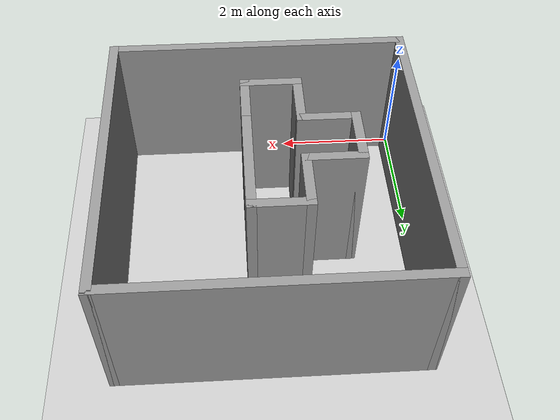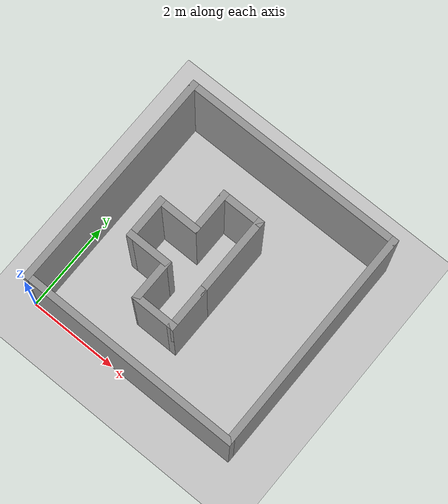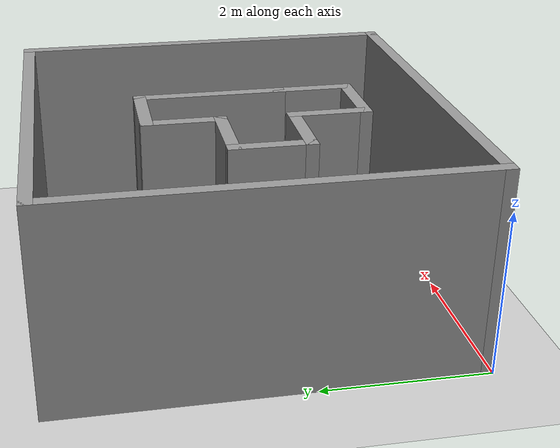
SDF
<sdf version="1.6">
 <world name="default">
  <light name="sun" type="directional">
   <pose>0 0 10 0 -0 0</pose>
   <diffuse>0.8 0.8 0.8 1</diffuse>
   <specular>0.1 0.1 0.1 1</specular>
   <attenuation>
    <range>1000</range>
    <constant>0.9</constant>
    <linear>0.01</linear>
    <quadratic>0.001</quadratic>
   </attenuation>
   <direction>-0.5 0.5 -1</direction>
  </light>
  <model name="ground_plane">
   <static>1</static>
   <link name="link">
    <collision name="collision">
     <geometry><plane><normal>0 0 1</normal><size>100 100</size></plane></geometry>
     <surface><friction><ode><mu>100</mu><mu2>50</mu2></ode></friction></surface>
    </collision>
    <visual name="visual">
     <cast_shadows>0</cast_shadows>
     <geometry><plane><normal>0 0 1</normal><size>100 100</size></plane></geometry>
     <material>
      <script><uri>file://media/materials/scripts/gazebo.material</uri><name>Gazebo/Grey</name></script>
     </material>
    </visual>
   </link>
  </model>
  <gravity>0 0 -9.8</gravity>
  <magnetic_field>6e-06 2.3e-05 -4.2e-05</magnetic_field>
  <atmosphere type="adiabatic"/>
  <physics name="default_physics" default="0" type="ode">
   <max_step_size>0.001</max_step_size>
   <real_time_factor>1</real_time_factor>
   <real_time_update_rate>1000</real_time_update_rate>
  </physics>
  <scene><ambient>0.4 0.4 0.4 1</ambient><background>0.7 0.7 0.7 1</background><shadows>1</shadows></scene>
  <spherical_coordinates>
   <surface_model>EARTH_WGS84</surface_model>
   <latitude_deg>0</latitude_deg>
   <longitude_deg>0</longitude_deg>
   <elevation>0</elevation>
   <heading_deg>0</heading_deg>
  </spherical_coordinates>
  <model name="Untitled">
   <pose>2.49562 2.5 0 0 -0 0</pose>
   <link name="Wall_0">
    <collision name="Wall_0_Collision">
     <geometry><box><size>5 0.15 2.5</size></box></geometry>
     <pose>0 0 1.25 0 -0 0</pose>
    </collision>
    <visual name="Wall_0_Visual">
     <pose>0 0 1.25 0 -0 0</pose>
     <geometry><box><size>5 0.15 2.5</size></box></geometry>
     <material>
      <script><uri>file://media/materials/scripts/gazebo.material</uri><name>Gazebo/Grey</name></script>
      <ambient>1 1 1 1</ambient>
     </material>
    </visual>
    <pose>0 2.425 0 0 -0 0</pose>
   </link>
   <link name="Wall_1">
    <collision name="Wall_1_Collision">
     <geometry><box><size>5 0.15 2.5</size></box></geometry>
     <pose>0 0 1.25 0 -0 0</pose>
    </collision>
    <visual name="Wall_1_Visual">
     <pose>0 0 1.25 0 -0 0</pose>
     <geometry><box><size>5 0.15 2.5</size></box></geometry>
     <material>
      <script><uri>file://media/materials/scripts/gazebo.material</uri><name>Gazebo/Grey</name></script>
      <ambient>1 1 1 1</ambient>
     </material>
    </visual>
    <pose>2.425 0 0 0 0 -1.5708</pose>
   </link>
   <link name="Wall_16">
    <collision name="Wall_16_Collision">
     <geometry><box><size>1 0.15 2.5</size></box></geometry>
     <pose>0 0 1.25 0 -0 0</pose>
    </collision>
    <visual name="Wall_16_Visual">
     <pose>0 0 1.25 0 -0 0</pose>
     <geometry><box><size>1 0.15 2.5</size></box></geometry>
     <material>
      <script><uri>file://media/materials/scripts/gazebo.material</uri><name>Gazebo/Grey</name></script>
      <ambient>1 1 1 1</ambient>
     </material>
    </visual>
    <pose>-0.588961 -1.01837 0 0 -0 1.5708</pose>
   </link>
   <link name="Wall_17">
    <collision name="Wall_17_Collision">
     <geometry><box><size>1 0.15 2.5</size></box></geometry>
     <pose>0 0 1.25 0 -0 0</pose>
    </collision>
    <visual name="Wall_17_Visual">
     <pose>0 0 1.25 0 -0 0</pose>
     <geometry><box><size>1 0.15 2.5</size></box></geometry>
     <material>
      <script><uri>file://media/materials/scripts/gazebo.material</uri><name>Gazebo/Grey</name></script>
      <ambient>1 1 1 1</ambient>
     </material>
    </visual>
    <pose>-1.01396 -0.593367 0 0 -0 3.14159</pose>
   </link>
   <link name="Wall_2">
    <collision name="Wall_2_Collision">
     <geometry><box><size>5 0.15 2.5</size></box></geometry>
     <pose>0 0 1.25 0 -0 0</pose>
    </collision>
    <visual name="Wall_2_Visual">
     <pose>0 0 1.25 0 -0 0</pose>
     <geometry><box><size>5 0.15 2.5</size></box></geometry>
     <material>
      <script><uri>file://media/materials/scripts/gazebo.material</uri><name>Gazebo/Grey</name></script>
      <ambient>1 1 1 1</ambient>
     </material>
    </visual>
    <pose>0 -2.425 0 0 -0 3.14159</pose>
   </link>
   <link name="Wall_20">
    <collision name="Wall_20_Collision">
     <geometry><box><size>1 0.15 2.5</size></box></geometry>
     <pose>0 0 1.25 0 -0 0</pose>
    </collision>
    <visual name="Wall_20_Visual">
     <pose>0 0 1.25 0 -0 0</pose>
     <geometry><box><size>1 0.15 2.5</size></box></geometry>
     <material>
      <script><uri>file://media/materials/scripts/gazebo.material</uri><name>Gazebo/Grey</name></script>
      <ambient>1 1 1 1</ambient>
     </material>
    </visual>
    <pose>-1.43896 -0.168367 0 0 -0 1.5708</pose>
   </link>
   <link name="Wall_21">
    <collision name="Wall_21_Collision">
     <geometry><box><size>1 0.15 2.5</size></box></geometry>
     <pose>0 0 1.25 0 -0 0</pose>
    </collision>
    <visual name="Wall_21_Visual">
     <pose>0 0 1.25 0 -0 0</pose>
     <geometry><box><size>1 0.15 2.5</size></box></geometry>
     <material>
      <script><uri>file://media/materials/scripts/gazebo.material</uri><name>Gazebo/Grey</name></script>
      <ambient>1 1 1 1</ambient>
     </material>
    </visual>
    <pose>-1.01396 0.256633 0 0 -0 0</pose>
   </link>
   <link name="Wall_22">
    <collision name="Wall_22_Collision">
     <geometry><box><size>1 0.15 2.5</size></box></geometry>
     <pose>0 0 1.25 0 -0 0</pose>
    </collision>
    <visual name="Wall_22_Visual">
     <pose>0 0 1.25 0 -0 0</pose>
     <geometry><box><size>1 0.15 2.5</size></box></geometry>
     <material>
      <script><uri>file://media/materials/scripts/gazebo.material</uri><name>Gazebo/Grey</name></script>
      <ambient>1 1 1 1</ambient>
     </material>
    </visual>
    <pose>-0.588961 0.681634 0 0 -0 1.5708</pose>
   </link>
   <link name="Wall_23">
    <collision name="Wall_23_Collision">
     <geometry><box><size>1 0.15 2.5</size></box></geometry>
     <pose>0 0 1.25 0 -0 0</pose>
    </collision>
    <visual name="Wall_23_Visual">
     <pose>0 0 1.25 0 -0 0</pose>
     <geometry><box><size>1 0.15 2.5</size></box></geometry>
     <material>
      <script><uri>file://media/materials/scripts/gazebo.material</uri><name>Gazebo/Grey</name></script>
      <ambient>1 1 1 1</ambient>
     </material>
    </visual>
    <pose>-0.163961 1.10663 0 0 -0 0</pose>
   </link>
   <link name="Wall_24">
    <collision name="Wall_24_Collision">
     <geometry><box><size>1.85 0.15 2.5</size></box></geometry>
     <pose>0 0 1.25 0 -0 0</pose>
    </collision>
    <visual name="Wall_24_Visual">
     <pose>0 0 1.25 0 -0 0</pose>
     <geometry><box><size>1.85 0.15 2.5</size></box></geometry>
     <material>
      <script><uri>file://media/materials/scripts/gazebo.material</uri><name>Gazebo/Grey</name></script>
      <ambient>1 1 1 1</ambient>
     </material>
    </visual>
    <pose>0.261039 0.256633 0 0 0 -1.5708</pose>
   </link>
   <link name="Wall_3">
    <collision name="Wall_3_Collision">
     <geometry><box><size>5 0.15 2.5</size></box></geometry>
     <pose>0 0 1.25 0 -0 0</pose>
    </collision>
    <visual name="Wall_3_Visual">
     <pose>0 0 1.25 0 -0 0</pose>
     <geometry><box><size>5 0.15 2.5</size></box></geometry>
     <material>
      <script><uri>file://media/materials/scripts/gazebo.material</uri><name>Gazebo/Grey</name></script>
      <ambient>1 1 1 1</ambient>
     </material>
    </visual>
    <pose>-2.425 0 0 0 -0 1.5708</pose>
   </link>
   <link name="Wall_7">
    <collision name="Wall_7_Collision">
     <geometry><box><size>1 0.15 2.5</size></box></geometry>
     <pose>0 0 1.25 0 -0 0</pose>
    </collision>
    <visual name="Wall_7_Visual">
     <pose>0 0 1.25 0 -0 0</pose>
     <geometry><box><size>1 0.15 2.5</size></box></geometry>
     <material>
      <script><uri>file://media/materials/scripts/gazebo.material</uri><name>Gazebo/Grey</name></script>
      <ambient>1 1 1 1</ambient>
     </material>
    </visual>
    <pose>-0.163961 -1.44337 0 0 -0 0</pose>
   </link>
   <link name="Wall_8">
    <collision name="Wall_8_Collision">
     <geometry><box><size>1 0.15 2.5</size></box></geometry>
     <pose>0 0 1.25 0 -0 0</pose>
    </collision>
    <visual name="Wall_8_Visual">
     <pose>0 0 1.25 0 -0 0</pose>
     <geometry><box><size>1 0.15 2.5</size></box></geometry>
     <material>
      <script><uri>file://media/materials/scripts/gazebo.material</uri><name>Gazebo/Grey</name></script>
      <ambient>1 1 1 1</ambient>
     </material>
    </visual>
    <pose>0.261039 -1.01837 0 0 -0 1.5708</pose>
   </link>
   <static>1</static>
  </model>
 </world>
</sdf>
